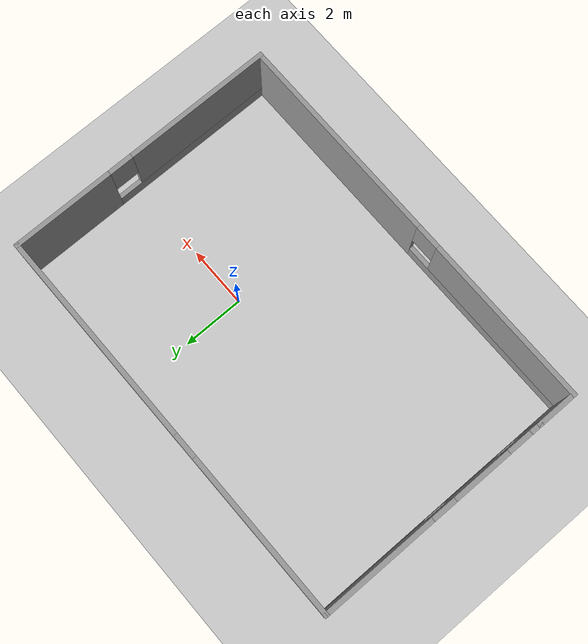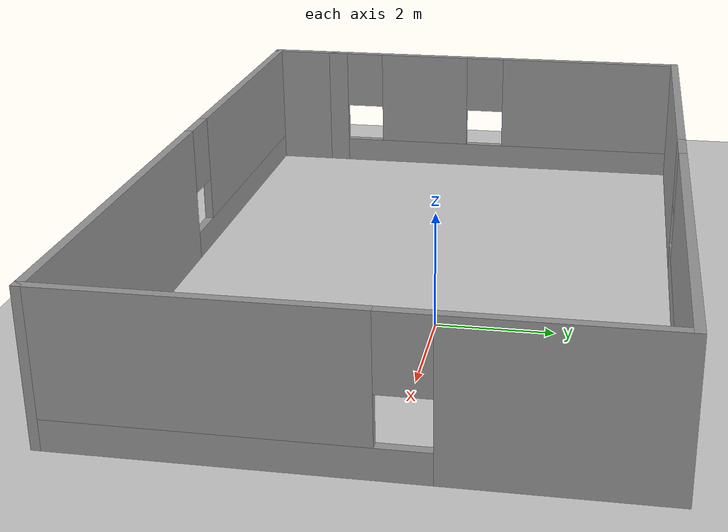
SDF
<sdf version="1.7">
 <world name="default">
  <light name="sun" type="directional">
   <pose>0 0 10 0 -0 0</pose>
   <diffuse>0.8 0.8 0.8 1</diffuse>
   <specular>0.2 0.2 0.2 1</specular>
   <attenuation>
    <range>1000</range>
    <constant>0.9</constant>
    <linear>0.01</linear>
    <quadratic>0.001</quadratic>
   </attenuation>
   <direction>-0.5 0.1 -0.9</direction>
   <spot><inner_angle>0</inner_angle><outer_angle>0</outer_angle><falloff>0</falloff></spot>
  </light>
  <model name="ground_plane">
   <static>1</static>
   <link name="link">
    <collision name="collision">
     <geometry><plane><normal>0 0 1</normal><size>100 100</size></plane></geometry>
     <surface>
      <contact><collide_bitmask>65535</collide_bitmask></contact>
      <friction><ode><mu>100</mu><mu2>50</mu2></ode></friction>
     </surface>
    </collision>
    <visual name="visual">
     <cast_shadows>0</cast_shadows>
     <geometry><plane><normal>0 0 1</normal><size>100 100</size></plane></geometry>
     <material>
      <script><uri>file://media/materials/scripts/gazebo.material</uri><name>Gazebo/Grey</name></script>
     </material>
    </visual>
   </link>
  </model>
  <gravity>0 0 -9.8</gravity>
  <magnetic_field>6e-06 2.3e-05 -4.2e-05</magnetic_field>
  <atmosphere type="adiabatic"/>
  <physics type="ode">
   <max_step_size>0.001</max_step_size>
   <real_time_factor>1</real_time_factor>
   <real_time_update_rate>1000</real_time_update_rate>
  </physics>
  <scene><ambient>0.4 0.4 0.4 1</ambient><background>0.7 0.7 0.7 1</background><shadows>1</shadows></scene>
  <spherical_coordinates>
   <surface_model>EARTH_WGS84</surface_model>
   <latitude_deg>0</latitude_deg>
   <longitude_deg>0</longitude_deg>
   <elevation>0</elevation>
   <heading_deg>0</heading_deg>
  </spherical_coordinates>
  <model name="new_world">
   <pose>-1.85721 -0.452308 0 0 -0 0</pose>
   <link name="Wall_30">
    <pose>-6.55 0.625 0 0 -0 1.5708</pose>
    <visual name="Wall_30_Visual_0">
     <pose>-3.66676 0 1.25 0 -0 0</pose>
     <geometry><box><size>0.416471 0.15 2.5</size></box></geometry>
     <material>
      <script><uri>file://media/materials/scripts/gazebo.material</uri><name>Gazebo/Grey</name></script>
      <ambient>1 1 1 1</ambient>
     </material>
     <meta><layer>0</layer></meta>
    </visual>
    <collision name="Wall_30_Collision_0">
     <geometry><box><size>0.416471 0.15 2.5</size></box></geometry>
     <pose>-3.66676 0 1.25 0 -0 0</pose>
    </collision>
    <visual name="Wall_30_Visual_1">
     <pose>0.208236 0 0.25 0 -0 0</pose>
     <geometry><box><size>7.33353 0.15 0.5</size></box></geometry>
     <material>
      <script><uri>file://media/materials/scripts/gazebo.material</uri><name>Gazebo/Grey</name></script>
      <ambient>1 1 1 1</ambient>
     </material>
     <meta><layer>0</layer></meta>
    </visual>
    <collision name="Wall_30_Collision_1">
     <geometry><box><size>7.33353 0.15 0.5</size></box></geometry>
     <pose>0.208236 0 0.25 0 -0 0</pose>
    </collision>
    <visual name="Wall_30_Visual_2">
     <pose>-1.69422 0 1.5 0 -0 0</pose>
     <geometry><box><size>1.92863 0.15 2</size></box></geometry>
     <material>
      <script><uri>file://media/materials/scripts/gazebo.material</uri><name>Gazebo/Grey</name></script>
      <ambient>1 1 1 1</ambient>
     </material>
     <meta><layer>0</layer></meta>
    </visual>
    <collision name="Wall_30_Collision_2">
     <geometry><box><size>1.92863 0.15 2</size></box></geometry>
     <pose>-1.69422 0 1.5 0 -0 0</pose>
    </collision>
    <visual name="Wall_30_Visual_3">
     <pose>1.97255 0 1.5 0 -0 0</pose>
     <geometry><box><size>3.8049 0.15 2</size></box></geometry>
     <material>
      <script><uri>file://media/materials/scripts/gazebo.material</uri><name>Gazebo/Grey</name></script>
      <ambient>1 1 1 1</ambient>
     </material>
     <meta><layer>0</layer></meta>
    </visual>
    <collision name="Wall_30_Collision_3">
     <geometry><box><size>3.8049 0.15 2</size></box></geometry>
     <pose>1.97255 0 1.5 0 -0 0</pose>
    </collision>
    <visual name="Wall_30_Visual_4">
     <pose>-3.05853 0 1.9 0 -0 0</pose>
     <geometry><box><size>0.8 0.15 1.2</size></box></geometry>
     <material>
      <script><uri>file://media/materials/scripts/gazebo.material</uri><name>Gazebo/Grey</name></script>
      <ambient>1 1 1 1</ambient>
     </material>
     <meta><layer>0</layer></meta>
    </visual>
    <collision name="Wall_30_Collision_4">
     <geometry><box><size>0.8 0.15 1.2</size></box></geometry>
     <pose>-3.05853 0 1.9 0 -0 0</pose>
    </collision>
    <visual name="Wall_30_Visual_5">
     <pose>-0.329901 0 1.9 0 -0 0</pose>
     <geometry><box><size>0.8 0.15 1.2</size></box></geometry>
     <material>
      <script><uri>file://media/materials/scripts/gazebo.material</uri><name>Gazebo/Grey</name></script>
      <ambient>1 1 1 1</ambient>
     </material>
     <meta><layer>0</layer></meta>
    </visual>
    <collision name="Wall_30_Collision_5">
     <geometry><box><size>0.8 0.15 1.2</size></box></geometry>
     <pose>-0.329901 0 1.9 0 -0 0</pose>
    </collision>
   </link>
   <link name="Wall_31">
    <pose>0 4.425 0 0 -0 0</pose>
    <visual name="Wall_31_Visual_0">
     <pose>-3.91375 0 1.25 0 -0 0</pose>
     <geometry><box><size>5.4225 0.15 2.5</size></box></geometry>
     <material>
      <script><uri>file://media/materials/scripts/gazebo.material</uri><name>Gazebo/Grey</name></script>
      <ambient>1 1 1 1</ambient>
     </material>
     <meta><layer>0</layer></meta>
    </visual>
    <collision name="Wall_31_Collision_0">
     <geometry><box><size>5.4225 0.15 2.5</size></box></geometry>
     <pose>-3.91375 0 1.25 0 -0 0</pose>
    </collision>
    <visual name="Wall_31_Visual_1">
     <pose>2.71125 0 0.25 0 -0 0</pose>
     <geometry><box><size>7.8275 0.15 0.5</size></box></geometry>
     <material>
      <script><uri>file://media/materials/scripts/gazebo.material</uri><name>Gazebo/Grey</name></script>
      <ambient>1 1 1 1</ambient>
     </material>
     <meta><layer>0</layer></meta>
    </visual>
    <collision name="Wall_31_Collision_1">
     <geometry><box><size>7.8275 0.15 0.5</size></box></geometry>
     <pose>2.71125 0 0.25 0 -0 0</pose>
    </collision>
    <visual name="Wall_31_Visual_2">
     <pose>3.11125 0 1.5 0 -0 0</pose>
     <geometry><box><size>7.0275 0.15 2</size></box></geometry>
     <material>
      <script><uri>file://media/materials/scripts/gazebo.material</uri><name>Gazebo/Grey</name></script>
      <ambient>1 1 1 1</ambient>
     </material>
     <meta><layer>0</layer></meta>
    </visual>
    <collision name="Wall_31_Collision_2">
     <geometry><box><size>7.0275 0.15 2</size></box></geometry>
     <pose>3.11125 0 1.5 0 -0 0</pose>
    </collision>
    <visual name="Wall_31_Visual_3">
     <pose>-0.802502 0 1.9 0 -0 0</pose>
     <geometry><box><size>0.8 0.15 1.2</size></box></geometry>
     <material>
      <script><uri>file://media/materials/scripts/gazebo.material</uri><name>Gazebo/Grey</name></script>
      <ambient>1 1 1 1</ambient>
     </material>
     <meta><layer>0</layer></meta>
    </visual>
    <collision name="Wall_31_Collision_3">
     <geometry><box><size>0.8 0.15 1.2</size></box></geometry>
     <pose>-0.802502 0 1.9 0 -0 0</pose>
    </collision>
   </link>
   <link name="Wall_32">
    <pose>6.55 -0 0 0 -0 -1.5708</pose>
    <visual name="Wall_32_Visual_0">
     <pose>-2.82493 0 1.25 0 -0 0</pose>
     <geometry><box><size>3.35013 0.15 2.5</size></box></geometry>
     <material>
      <script><uri>file://media/materials/scripts/gazebo.material</uri><name>Gazebo/Grey</name></script>
      <ambient>1 1 1 1</ambient>
     </material>
     <meta><layer>0</layer></meta>
    </visual>
    <collision name="Wall_32_Collision_0">
     <geometry><box><size>3.35013 0.15 2.5</size></box></geometry>
     <pose>-2.82493 0 1.25 0 -0 0</pose>
    </collision>
    <visual name="Wall_32_Visual_1">
     <pose>1.67507 0 0.25 0 -0 0</pose>
     <geometry><box><size>5.64987 0.15 0.5</size></box></geometry>
     <material>
      <script><uri>file://media/materials/scripts/gazebo.material</uri><name>Gazebo/Grey</name></script>
      <ambient>1 1 1 1</ambient>
     </material>
     <meta><layer>0</layer></meta>
    </visual>
    <collision name="Wall_32_Collision_1">
     <geometry><box><size>5.64987 0.15 0.5</size></box></geometry>
     <pose>1.67507 0 0.25 0 -0 0</pose>
    </collision>
    <visual name="Wall_32_Visual_2">
     <pose>2.07506 0 1.5 0 -0 0</pose>
     <geometry><box><size>4.84987 0.15 2</size></box></geometry>
     <material>
      <script><uri>file://media/materials/scripts/gazebo.material</uri><name>Gazebo/Grey</name></script>
      <ambient>1 1 1 1</ambient>
     </material>
     <meta><layer>0</layer></meta>
    </visual>
    <collision name="Wall_32_Collision_2">
     <geometry><box><size>4.84987 0.15 2</size></box></geometry>
     <pose>2.07506 0 1.5 0 -0 0</pose>
    </collision>
    <visual name="Wall_32_Visual_3">
     <pose>-0.74987 0 1.9 0 -0 0</pose>
     <geometry><box><size>0.8 0.15 1.2</size></box></geometry>
     <material>
      <script><uri>file://media/materials/scripts/gazebo.material</uri><name>Gazebo/Grey</name></script>
      <ambient>1 1 1 1</ambient>
     </material>
     <meta><layer>0</layer></meta>
    </visual>
    <collision name="Wall_32_Collision_3">
     <geometry><box><size>0.8 0.15 1.2</size></box></geometry>
     <pose>-0.74987 0 1.9 0 -0 0</pose>
    </collision>
   </link>
   <link name="Wall_33">
    <pose>0 -4.425 0 0 -0 3.14159</pose>
    <visual name="Wall_33_Visual_0">
     <pose>-3.16475 0 1.25 0 -0 0</pose>
     <geometry><box><size>6.9205 0.15 2.5</size></box></geometry>
     <material>
      <script><uri>file://media/materials/scripts/gazebo.material</uri><name>Gazebo/Grey</name></script>
      <ambient>1 1 1 1</ambient>
     </material>
     <meta><layer>0</layer></meta>
    </visual>
    <collision name="Wall_33_Collision_0">
     <geometry><box><size>6.9205 0.15 2.5</size></box></geometry>
     <pose>-3.16475 0 1.25 0 -0 0</pose>
    </collision>
    <visual name="Wall_33_Visual_1">
     <pose>3.46025 0 0.25 0 -0 0</pose>
     <geometry><box><size>6.3295 0.15 0.5</size></box></geometry>
     <material>
      <script><uri>file://media/materials/scripts/gazebo.material</uri><name>Gazebo/Grey</name></script>
      <ambient>1 1 1 1</ambient>
     </material>
     <meta><layer>0</layer></meta>
    </visual>
    <collision name="Wall_33_Collision_1">
     <geometry><box><size>6.3295 0.15 0.5</size></box></geometry>
     <pose>3.46025 0 0.25 0 -0 0</pose>
    </collision>
    <visual name="Wall_33_Visual_2">
     <pose>3.86025 0 1.5 0 -0 0</pose>
     <geometry><box><size>5.5295 0.15 2</size></box></geometry>
     <material>
      <script><uri>file://media/materials/scripts/gazebo.material</uri><name>Gazebo/Grey</name></script>
      <ambient>1 1 1 1</ambient>
     </material>
     <meta><layer>0</layer></meta>
    </visual>
    <collision name="Wall_33_Collision_2">
     <geometry><box><size>5.5295 0.15 2</size></box></geometry>
     <pose>3.86025 0 1.5 0 -0 0</pose>
    </collision>
    <visual name="Wall_33_Visual_3">
     <pose>0.695497 0 1.9 0 -0 0</pose>
     <geometry><box><size>0.8 0.15 1.2</size></box></geometry>
     <material>
      <script><uri>file://media/materials/scripts/gazebo.material</uri><name>Gazebo/Grey</name></script>
      <ambient>1 1 1 1</ambient>
     </material>
     <meta><layer>0</layer></meta>
    </visual>
    <collision name="Wall_33_Collision_3">
     <geometry><box><size>0.8 0.15 1.2</size></box></geometry>
     <pose>0.695497 0 1.9 0 -0 0</pose>
    </collision>
   </link>
   <link name="Wall_34">
    <collision name="Wall_34_Collision">
     <geometry><box><size>1.4 0.15 2.5</size></box></geometry>
     <pose>0 0 1.25 0 -0 0</pose>
    </collision>
    <visual name="Wall_34_Visual">
     <pose>0 0 1.25 0 -0 0</pose>
     <geometry><box><size>1.4 0.15 2.5</size></box></geometry>
     <material>
      <script><uri>file://media/materials/scripts/gazebo.material</uri><name>Gazebo/Grey</name></script>
      <ambient>1 1 1 1</ambient>
     </material>
     <meta><layer>0</layer></meta>
    </visual>
    <pose>-6.55 -3.8 0 0 -0 1.5708</pose>
   </link>
   <static>1</static>
  </model>
 </world>
</sdf>
